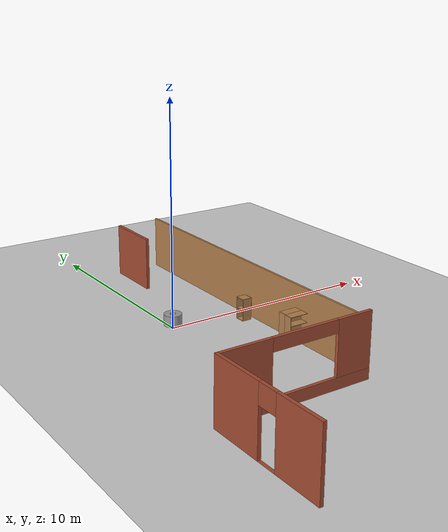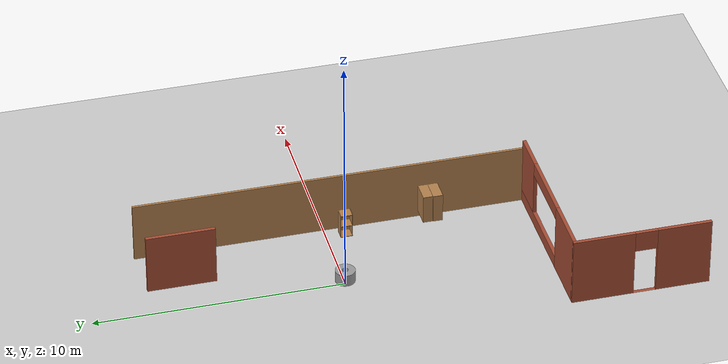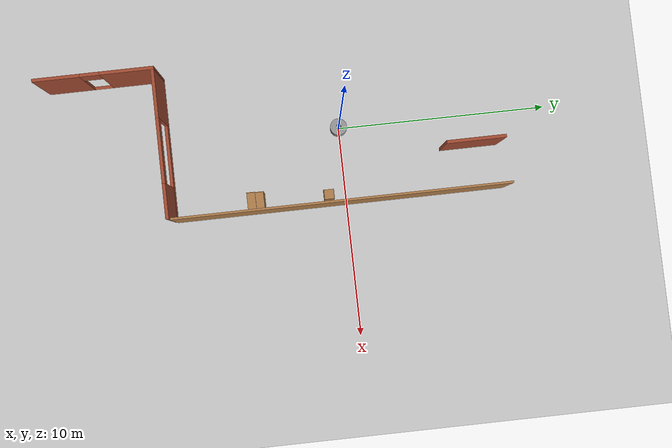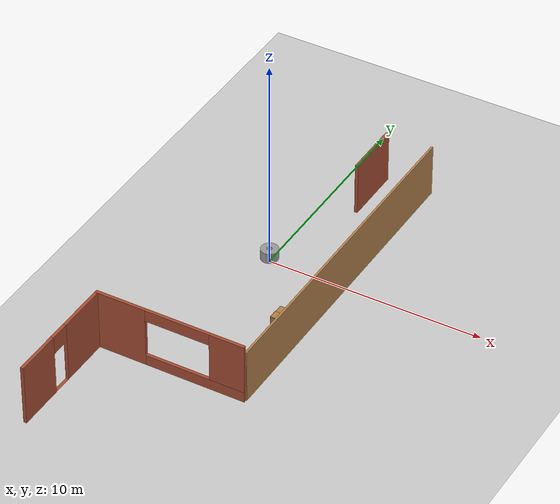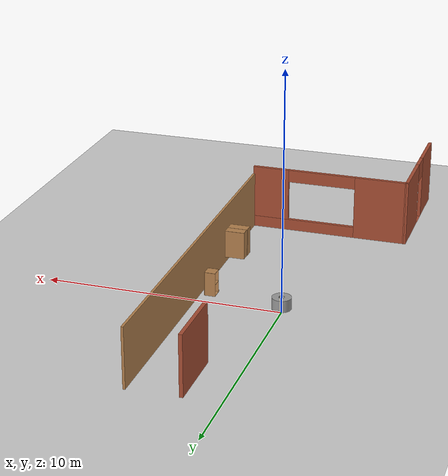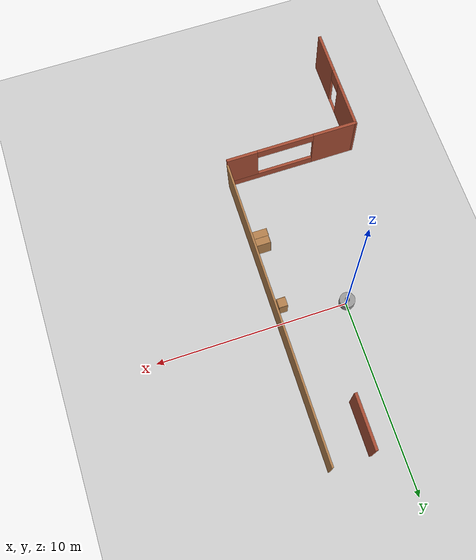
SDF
<sdf version="1.6">
 <world name="default">
  <model name="ground_plane">
   <static>1</static>
   <link name="link">
    <collision name="collision">
     <geometry><plane><normal>0 0 1</normal><size>100 100</size></plane></geometry>
    </collision>
    <visual name="visual">
     <cast_shadows>0</cast_shadows>
     <geometry><plane><normal>0 0 1</normal><size>100 100</size></plane></geometry>
     <material>
      <script><uri>file://media/materials/scripts/gazebo.material</uri><name>Gazebo/Grey</name></script>
     </material>
    </visual>
   </link>
  </model>
  <gravity>0 0 -9.8</gravity>
  <magnetic_field>6e-06 2.3e-05 -4.2e-05</magnetic_field>
  <atmosphere type="adiabatic"/>
  <physics name="default_physics" default="0" type="ode">
   <real_time_update_rate>250</real_time_update_rate>
   <max_step_size>0.004</max_step_size>
   <real_time_factor>1</real_time_factor>
   <ode>
    <solver>
     <type>quick</type>
     <iters>150</iters>
     <precon_iters>0</precon_iters>
     <sor>1.4</sor>
     <use_dynamic_moi_rescaling>1</use_dynamic_moi_rescaling>
    </solver>
    <constraints>
     <cfm>1e-05</cfm>
     <erp>0.2</erp>
     <contact_max_correcting_vel>2000</contact_max_correcting_vel>
     <contact_surface_layer>0.01</contact_surface_layer>
    </constraints>
   </ode>
  </physics>
  <scene><ambient>0.4 0.4 0.4 1</ambient><background>0.7 0.7 0.7 1</background><shadows>1</shadows></scene>
  <spherical_coordinates>
   <surface_model>EARTH_WGS84</surface_model>
   <latitude_deg>0</latitude_deg>
   <longitude_deg>0</longitude_deg>
   <elevation>0</elevation>
   <heading_deg>0</heading_deg>
  </spherical_coordinates>
  <model name="cafe_room">
   <pose>0.165031 -6.85753 0 0 -0 0</pose>
   <link name="Wall_0">
    <pose>3.8e-05 -1.36625 0 0 -0 0.000649</pose>
    <visual name="Wall_0_Visual_0">
     <pose>-2.31327 0 1.425 0 -0 0</pose>
     <geometry><box><size>2.37346 0.15 2.85</size></box></geometry>
     <material>
      <script><uri>file://media/materials/scripts/gazebo.material</uri><name>Gazebo/Bricks</name></script>
      <ambient>0.309804 0.309804 0.309804 1</ambient>
     </material>
     <meta><layer>0</layer></meta>
    </visual>
    <collision name="Wall_0_Collision_0">
     <geometry><box><size>2.37346 0.15 2.85</size></box></geometry>
     <pose>-2.31327 0 1.425 0 -0 0</pose>
    </collision>
    <visual name="Wall_0_Visual_1">
     <pose>1.18673 0 0.25 0 -0 0</pose>
     <geometry><box><size>4.62654 0.15 0.5</size></box></geometry>
     <material>
      <script><uri>file://media/materials/scripts/gazebo.material</uri><name>Gazebo/Bricks</name></script>
      <ambient>0.309804 0.309804 0.309804 1</ambient>
     </material>
     <meta><layer>0</layer></meta>
    </visual>
    <collision name="Wall_0_Collision_1">
     <geometry><box><size>4.62654 0.15 0.5</size></box></geometry>
     <pose>1.18673 0 0.25 0 -0 0</pose>
    </collision>
    <visual name="Wall_0_Visual_2">
     <pose>2.68673 0 1.675 0 -0 0</pose>
     <geometry><box><size>1.62654 0.15 2.35</size></box></geometry>
     <material>
      <script><uri>file://media/materials/scripts/gazebo.material</uri><name>Gazebo/Bricks</name></script>
      <ambient>0.309804 0.309804 0.309804 1</ambient>
     </material>
     <meta><layer>0</layer></meta>
    </visual>
    <collision name="Wall_0_Collision_2">
     <geometry><box><size>1.62654 0.15 2.35</size></box></geometry>
     <pose>2.68673 0 1.675 0 -0 0</pose>
    </collision>
    <visual name="Wall_0_Visual_3">
     <pose>0.37346 0 2.575 0 -0 0</pose>
     <geometry><box><size>3 0.15 0.55</size></box></geometry>
     <material>
      <script><uri>file://media/materials/scripts/gazebo.material</uri><name>Gazebo/Bricks</name></script>
      <ambient>0.309804 0.309804 0.309804 1</ambient>
     </material>
     <meta><layer>0</layer></meta>
    </visual>
    <collision name="Wall_0_Collision_3">
     <geometry><box><size>3 0.15 0.55</size></box></geometry>
     <pose>0.37346 0 2.575 0 -0 0</pose>
    </collision>
   </link>
   <link name="Wall_3">
    <pose>-3.42303 -4.07547 0 0 -0 -1.57006</pose>
    <visual name="Wall_3_Visual_0">
     <pose>-1.53914 0 1.425 0 -0 0</pose>
     <geometry><box><size>2.48571 0.15 2.85</size></box></geometry>
     <material>
      <script><uri>file://media/materials/scripts/gazebo.material</uri><name>Gazebo/Bricks</name></script>
      <ambient>0.309804 0.309804 0.309804 1</ambient>
     </material>
     <meta><layer>0</layer></meta>
    </visual>
    <collision name="Wall_3_Collision_0">
     <geometry><box><size>2.48571 0.15 2.85</size></box></geometry>
     <pose>-1.53914 0 1.425 0 -0 0</pose>
    </collision>
    <visual name="Wall_3_Visual_1">
     <pose>1.69286 0 1.425 0 -0 0</pose>
     <geometry><box><size>2.17829 0.15 2.85</size></box></geometry>
     <material>
      <script><uri>file://media/materials/scripts/gazebo.material</uri><name>Gazebo/Bricks</name></script>
      <ambient>0.309804 0.309804 0.309804 1</ambient>
     </material>
     <meta><layer>0</layer></meta>
    </visual>
    <collision name="Wall_3_Collision_1">
     <geometry><box><size>2.17829 0.15 2.85</size></box></geometry>
     <pose>1.69286 0 1.425 0 -0 0</pose>
    </collision>
    <visual name="Wall_3_Visual_2">
     <pose>0.153711 0 0 0 -0 0</pose>
     <geometry><box><size>0.9 0.15 0</size></box></geometry>
     <material>
      <script><uri>file://media/materials/scripts/gazebo.material</uri><name>Gazebo/Bricks</name></script>
      <ambient>0.309804 0.309804 0.309804 1</ambient>
     </material>
     <meta><layer>0</layer></meta>
    </visual>
    <collision name="Wall_3_Collision_2">
     <geometry><box><size>0.9 0.15 0</size></box></geometry>
     <pose>0.153711 0 0 0 -0 0</pose>
    </collision>
    <visual name="Wall_3_Visual_3">
     <pose>0.153711 0 2.425 0 -0 0</pose>
     <geometry><box><size>0.9 0.15 0.85</size></box></geometry>
     <material>
      <script><uri>file://media/materials/scripts/gazebo.material</uri><name>Gazebo/Bricks</name></script>
      <ambient>0.309804 0.309804 0.309804 1</ambient>
     </material>
     <meta><layer>0</layer></meta>
    </visual>
    <collision name="Wall_3_Collision_3">
     <geometry><box><size>0.9 0.15 0.85</size></box></geometry>
     <pose>0.153711 0 2.425 0 -0 0</pose>
    </collision>
   </link>
   <static>1</static>
  </model>
  <model name="ceiling">
   <link name="link">
    <inertial>
     <mass>100000</mass>
     <inertia><ixx>100000</ixx><ixy>0</ixy><ixz>0</ixz><iyy>100000</iyy><iyz>0</iyz><izz>100000</izz></inertia>
    </inertial>
    <collision name="collision"><geometry><box><size>300 300 0.5</size></box></geometry></collision>
   </link>
   <pose>-0.001253 -3e-05 3.11363 2.7e-05 -0.004139 -2.6e-05</pose>
  </model>
  <light name="user_directional_light_1" type="directional">
   <pose>69.4265 -45.3011 1 0 -0 0</pose>
   <diffuse>0.5 0.5 0.5 1</diffuse>
   <specular>0.1 0.1 0.1 1</specular>
   <direction>0.1 0.1 -0.9</direction>
   <attenuation>
    <range>20</range>
    <constant>0.5</constant>
    <linear>0.01</linear>
    <quadratic>0.001</quadratic>
   </attenuation>
  </light>
  <light name="user_point_light_0" type="point">
   <pose>-1.19379 -7.98022 1 0 -0 0</pose>
   <diffuse>0.5 0.5 0.5 1</diffuse>
   <specular>0.1 0.1 0.1 1</specular>
   <attenuation>
    <range>20</range>
    <constant>0.5</constant>
    <linear>0.01</linear>
    <quadratic>0.001</quadratic>
   </attenuation>
   <cast_shadows>0</cast_shadows>
   <direction>0 0 -1</direction>
  </light>
  <light name="user_point_light_1" type="point">
   <pose>0.766851 -12.0385 1 0 -0 0</pose>
   <diffuse>0.5 0.5 0.5 1</diffuse>
   <specular>0.1 0.1 0.1 1</specular>
   <attenuation>
    <range>20</range>
    <constant>0.5</constant>
    <linear>0.01</linear>
    <quadratic>0.001</quadratic>
   </attenuation>
   <cast_shadows>0</cast_shadows>
   <direction>0 0 -1</direction>
  </light>
  <light name="user_directional_light_2" type="directional">
   <pose>2.85707 -5.47055 1 0 -0 0</pose>
   <diffuse>0.5 0.5 0.5 1</diffuse>
   <specular>0.1 0.1 0.1 1</specular>
   <direction>0.1 0.1 -0.9</direction>
   <attenuation>
    <range>20</range>
    <constant>0.5</constant>
    <linear>0.01</linear>
    <quadratic>0.001</quadratic>
   </attenuation>
  </light>
  <light name="user_point_light_3" type="point">
   <pose>2.80305 -7.84683 1 0 -0 0</pose>
   <diffuse>0.5 0.5 0.5 1</diffuse>
   <specular>0.1 0.1 0.1 1</specular>
   <attenuation>
    <range>20</range>
    <constant>0.5</constant>
    <linear>0.01</linear>
    <quadratic>0.001</quadratic>
   </attenuation>
   <cast_shadows>0</cast_shadows>
   <direction>0 0 -1</direction>
  </light>
  <light name="user_directional_light_3" type="directional">
   <pose>-3.4686 -9.00205 1 0 -0 0</pose>
   <diffuse>0.5 0.5 0.5 1</diffuse>
   <specular>0.1 0.1 0.1 1</specular>
   <direction>0.1 0.1 -0.9</direction>
   <attenuation>
    <range>20</range>
    <constant>0.5</constant>
    <linear>0.01</linear>
    <quadratic>0.001</quadratic>
   </attenuation>
  </light>
  <light name="user_directional_light_4" type="directional">
   <pose>2.30045 -0.072071 1 0 -0 0</pose>
   <diffuse>0.5 0.5 0.5 1</diffuse>
   <specular>0.1 0.1 0.1 1</specular>
   <direction>0.1 0.1 -0.9</direction>
   <attenuation>
    <range>20</range>
    <constant>0.5</constant>
    <linear>0.01</linear>
    <quadratic>0.001</quadratic>
   </attenuation>
  </light>
  <light name="user_point_light_4" type="point">
   <pose>0.076075 -5.91752 1 0 -0 0</pose>
   <diffuse>0.5 0.5 0.5 1</diffuse>
   <specular>0.1 0.1 0.1 1</specular>
   <attenuation>
    <range>20</range>
    <constant>0.5</constant>
    <linear>0.01</linear>
    <quadratic>0.001</quadratic>
   </attenuation>
   <cast_shadows>0</cast_shadows>
   <direction>0 0 -1</direction>
  </light>
  <model name="bookshelf">
   <static>1</static>
   <link name="link">
    <inertial><mass>1</mass></inertial>
    <collision name="back">
     <pose>0 0.005 0.6 0 -0 0</pose>
     <geometry><box><size>0.9 0.01 1.2</size></box></geometry>
    </collision>
    <visual name="visual1">
     <pose>0 0.005 0.6 0 -0 0</pose>
     <geometry><box><size>0.9 0.01 1.2</size></box></geometry>
     <material>
      <script><uri>file://media/materials/scripts/gazebo.material</uri><name>Gazebo/Wood</name></script>
     </material>
    </visual>
    <collision name="left_side">
     <pose>0.45 -0.195 0.6 0 -0 0</pose>
     <geometry><box><size>0.02 0.4 1.2</size></box></geometry>
    </collision>
    <visual name="visual2">
     <pose>0.45 -0.195 0.6 0 -0 0</pose>
     <geometry><box><size>0.02 0.4 1.2</size></box></geometry>
     <material>
      <script><uri>file://media/materials/scripts/gazebo.material</uri><name>Gazebo/Wood</name></script>
     </material>
    </visual>
    <collision name="right_side">
     <pose>-0.45 -0.195 0.6 0 -0 0</pose>
     <geometry><box><size>0.02 0.4 1.2</size></box></geometry>
    </collision>
    <visual name="visual3">
     <pose>-0.45 -0.195 0.6 0 -0 0</pose>
     <geometry><box><size>0.02 0.4 1.2</size></box></geometry>
     <material>
      <script><uri>file://media/materials/scripts/gazebo.material</uri><name>Gazebo/Wood</name></script>
     </material>
    </visual>
    <collision name="bottom">
     <pose>0 -0.195 0.03 0 -0 0</pose>
     <geometry><box><size>0.88 0.4 0.06</size></box></geometry>
    </collision>
    <visual name="visual4">
     <pose>0 -0.195 0.03 0 -0 0</pose>
     <geometry><box><size>0.88 0.4 0.06</size></box></geometry>
     <material>
      <script><uri>file://media/materials/scripts/gazebo.material</uri><name>Gazebo/Wood</name></script>
     </material>
    </visual>
    <collision name="top">
     <pose>0 -0.195 1.19 0 -0 0</pose>
     <geometry><box><size>0.88 0.4 0.02</size></box></geometry>
    </collision>
    <visual name="visual5">
     <pose>0 -0.195 1.19 0 -0 0</pose>
     <geometry><box><size>0.88 0.4 0.02</size></box></geometry>
     <material>
      <script><uri>file://media/materials/scripts/gazebo.material</uri><name>Gazebo/Wood</name></script>
     </material>
    </visual>
    <collision name="low_shelf">
     <pose>0 -0.195 0.43 0 -0 0</pose>
     <geometry><box><size>0.88 0.4 0.02</size></box></geometry>
    </collision>
    <visual name="visual6">
     <pose>0 -0.195 0.43 0 -0 0</pose>
     <geometry><box><size>0.88 0.4 0.02</size></box></geometry>
     <material>
      <script><uri>file://media/materials/scripts/gazebo.material</uri><name>Gazebo/Wood</name></script>
     </material>
    </visual>
    <collision name="high_shelf">
     <pose>0 -0.195 0.8 0 -0 0</pose>
     <geometry><box><size>0.88 0.4 0.02</size></box></geometry>
    </collision>
    <visual name="visual7">
     <pose>0 -0.195 0.8 0 -0 0</pose>
     <geometry><box><size>0.88 0.4 0.02</size></box></geometry>
     <material>
      <script><uri>file://media/materials/scripts/gazebo.material</uri><name>Gazebo/Wood</name></script>
     </material>
    </visual>
   </link>
   <pose>3.20033 -4.26028 0.271039 0 -0 0</pose>
  </model>
  <model name="bookshelf_clone">
   <static>1</static>
   <link name="link">
    <inertial><mass>1</mass></inertial>
    <collision name="back">
     <pose>0 0.005 0.6 0 -0 0</pose>
     <geometry><box><size>0.9 0.01 1.2</size></box></geometry>
    </collision>
    <visual name="visual1">
     <pose>0 0.005 0.6 0 -0 0</pose>
     <geometry><box><size>0.9 0.01 1.2</size></box></geometry>
     <material>
      <script><uri>file://media/materials/scripts/gazebo.material</uri><name>Gazebo/Wood</name></script>
     </material>
    </visual>
    <collision name="left_side">
     <pose>0.45 -0.195 0.6 0 -0 0</pose>
     <geometry><box><size>0.02 0.4 1.2</size></box></geometry>
    </collision>
    <visual name="visual2">
     <pose>0.45 -0.195 0.6 0 -0 0</pose>
     <geometry><box><size>0.02 0.4 1.2</size></box></geometry>
     <material>
      <script><uri>file://media/materials/scripts/gazebo.material</uri><name>Gazebo/Wood</name></script>
     </material>
    </visual>
    <collision name="right_side">
     <pose>-0.45 -0.195 0.6 0 -0 0</pose>
     <geometry><box><size>0.02 0.4 1.2</size></box></geometry>
    </collision>
    <visual name="visual3">
     <pose>-0.45 -0.195 0.6 0 -0 0</pose>
     <geometry><box><size>0.02 0.4 1.2</size></box></geometry>
     <material>
      <script><uri>file://media/materials/scripts/gazebo.material</uri><name>Gazebo/Wood</name></script>
     </material>
    </visual>
    <collision name="bottom">
     <pose>0 -0.195 0.03 0 -0 0</pose>
     <geometry><box><size>0.88 0.4 0.06</size></box></geometry>
    </collision>
    <visual name="visual4">
     <pose>0 -0.195 0.03 0 -0 0</pose>
     <geometry><box><size>0.88 0.4 0.06</size></box></geometry>
     <material>
      <script><uri>file://media/materials/scripts/gazebo.material</uri><name>Gazebo/Wood</name></script>
     </material>
    </visual>
    <collision name="top">
     <pose>0 -0.195 1.19 0 -0 0</pose>
     <geometry><box><size>0.88 0.4 0.02</size></box></geometry>
    </collision>
    <visual name="visual5">
     <pose>0 -0.195 1.19 0 -0 0</pose>
     <geometry><box><size>0.88 0.4 0.02</size></box></geometry>
     <material>
      <script><uri>file://media/materials/scripts/gazebo.material</uri><name>Gazebo/Wood</name></script>
     </material>
    </visual>
    <collision name="low_shelf">
     <pose>0 -0.195 0.43 0 -0 0</pose>
     <geometry><box><size>0.88 0.4 0.02</size></box></geometry>
    </collision>
    <visual name="visual6">
     <pose>0 -0.195 0.43 0 -0 0</pose>
     <geometry><box><size>0.88 0.4 0.02</size></box></geometry>
     <material>
      <script><uri>file://media/materials/scripts/gazebo.material</uri><name>Gazebo/Wood</name></script>
     </material>
    </visual>
    <collision name="high_shelf">
     <pose>0 -0.195 0.8 0 -0 0</pose>
     <geometry><box><size>0.88 0.4 0.02</size></box></geometry>
    </collision>
    <visual name="visual7">
     <pose>0 -0.195 0.8 0 -0 0</pose>
     <geometry><box><size>0.88 0.4 0.02</size></box></geometry>
     <material>
      <script><uri>file://media/materials/scripts/gazebo.material</uri><name>Gazebo/Wood</name></script>
     </material>
    </visual>
   </link>
   <pose>3.22029 -3.86837 0.271039 0 -0 0</pose>
  </model>
  <model name="cabinet">
   <static>1</static>
   <link name="cabinet_bottom_plate">
    <inertial>
     <pose>0 0 -1 0 -0 0</pose>
     <inertia><ixx>2.05</ixx><ixy>0</ixy><ixz>0</ixz><iyy>2.05</iyy><iyz>0</iyz><izz>2.05</izz></inertia>
     <mass>25</mass>
    </inertial>
    <collision name="cabinet_bottom_plate_geom">
     <pose>0 0 0.01 0 -0 0</pose>
     <geometry><box><size>0.45 0.45 0.02</size></box></geometry>
    </collision>
    <visual name="cabinet_bottom_plate_geom_visual">
     <pose>0 0 0.01 0 -0 0</pose>
     <geometry><box><size>0.45 0.45 0.02</size></box></geometry>
     <material>
      <script><uri>file://media/materials/scripts/gazebo.material</uri><name>Gazebo/Wood</name></script>
     </material>
    </visual>
    <collision name="cabinet_bottom_plate_geom_cabinet_back_plate">
     <pose>0.235 0 0.51 0 -0 0</pose>
     <geometry><box><size>0.02 0.45 1.02</size></box></geometry>
    </collision>
    <visual name="cabinet_bottom_plate_geom_cabinet_back_plate_visual">
     <pose>0.235 0 0.51 0 -0 0</pose>
     <geometry><box><size>0.02 0.45 1.02</size></box></geometry>
     <material>
      <script><uri>file://media/materials/scripts/gazebo.material</uri><name>Gazebo/Wood</name></script>
     </material>
    </visual>
    <collision name="cabinet_bottom_plate_geom_cabinet_left_plate">
     <pose>0 0.235 0.51 0 -0 0</pose>
     <geometry><box><size>0.45 0.02 1.02</size></box></geometry>
    </collision>
    <visual name="cabinet_bottom_plate_geom_cabinet_left_plate_visual">
     <pose>0 0.235 0.51 0 -0 0</pose>
     <geometry><box><size>0.45 0.02 1.02</size></box></geometry>
     <material>
      <script><uri>file://media/materials/scripts/gazebo.material</uri><name>Gazebo/Wood</name></script>
     </material>
    </visual>
    <collision name="cabinet_bottom_plate_geom_cabinet_middle_plate">
     <pose>0 0 0.51 0 -0 0</pose>
     <geometry><box><size>0.45 0.45 0.02</size></box></geometry>
    </collision>
    <visual name="cabinet_bottom_plate_geom_cabinet_middle_plate_visual">
     <pose>0 0 0.51 0 -0 0</pose>
     <geometry><box><size>0.45 0.45 0.02</size></box></geometry>
     <material>
      <script><uri>file://media/materials/scripts/gazebo.material</uri><name>Gazebo/Wood</name></script>
     </material>
    </visual>
    <collision name="cabinet_bottom_plate_geom_cabinet_right_plate">
     <pose>0 -0.235 0.51 0 -0 0</pose>
     <geometry><box><size>0.45 0.02 1.02</size></box></geometry>
    </collision>
    <visual name="cabinet_bottom_plate_geom_cabinet_right_plate_visual">
     <pose>0 -0.235 0.51 0 -0 0</pose>
     <geometry><box><size>0.45 0.02 1.02</size></box></geometry>
     <material>
      <script><uri>file://media/materials/scripts/gazebo.material</uri><name>Gazebo/Wood</name></script>
     </material>
    </visual>
    <collision name="cabinet_bottom_plate_geom_cabinet_top_plate">
     <pose>0 0 1.01 0 -0 0</pose>
     <geometry><box><size>0.45 0.45 0.02</size></box></geometry>
    </collision>
    <visual name="cabinet_bottom_plate_geom_cabinet_top_plate_visual">
     <pose>0 0 1.01 0 -0 0</pose>
     <geometry><box><size>0.45 0.45 0.02</size></box></geometry>
     <material>
      <script><uri>file://media/materials/scripts/gazebo.material</uri><name>Gazebo/Wood</name></script>
     </material>
    </visual>
   </link>
   <pose>3.18421 -0.807099 0 0 -0 0</pose>
  </model>
  <model name="Untitled">
   <pose>1.85235 -0.28035 0 0 -0 0</pose>
   <link name="Wall_10">
    <collision name="Wall_10_Collision">
     <geometry><box><size>2.75 0.15 2.5</size></box></geometry>
     <pose>0 0 1.25 0 -0 0</pose>
    </collision>
    <visual name="Wall_10_Visual">
     <pose>0 0 1.25 0 -0 0</pose>
     <geometry><box><size>2.75 0.15 2.5</size></box></geometry>
     <material>
      <script><uri>file://media/materials/scripts/gazebo.material</uri><name>Gazebo/Bricks</name></script>
      <ambient>1 1 1 1</ambient>
     </material>
     <meta><layer>0</layer></meta>
    </visual>
    <pose>-0.333164 6.4203 0 0 -0 -1.5708</pose>
   </link>
   <link name="Wall_4">
    <collision name="Wall_4_Collision">
     <geometry><box><size>15.75 0.1 2.5</size></box></geometry>
     <pose>0 0 1.25 0 -0 0</pose>
    </collision>
    <visual name="Wall_4_Visual">
     <pose>0 0 1.25 0 -0 0</pose>
     <geometry><box><size>15.75 0.1 2.5</size></box></geometry>
     <material>
      <script><uri>file://media/materials/scripts/gazebo.material</uri><name>Gazebo/Wood</name></script>
      <ambient>1 1 1 1</ambient>
     </material>
     <meta><layer>0</layer></meta>
    </visual>
    <pose>1.80235 -0 0 0 -0 -1.5708</pose>
   </link>
   <static>1</static>
  </model>
  <model name="uav_arm_base">
   <link name="link_0">
    <inertial>
     <mass>100</mass>
     <inertia><ixx>16.6667</ixx><ixy>0</ixy><ixz>0</ixz><iyy>16.6667</iyy><iyz>0</iyz><izz>16.6667</izz></inertia>
     <pose>0.4 0.4 0 0 -0 0</pose>
    </inertial>
    <visual name="visual">
     <geometry><mesh><uri>/home/station18/ROS/gazebo_uav_base.stl</uri><scale>1 1 1</scale></mesh></geometry>
     <material>
      <lighting>1</lighting>
      <script><uri>file://media/materials/scripts/gazebo.material</uri><name>Gazebo/Grey</name></script>
      <shader type="pixel"><normal_map>__default__</normal_map></shader>
      <ambient>0.3 0.3 0.3 1</ambient>
      <diffuse>0.7 0.7 0.7 1</diffuse>
      <specular>0.01 0.01 0.01 1</specular>
      <emissive>0 0 0 1</emissive>
     </material>
    </visual>
    <collision name="collision">
     <geometry><mesh><uri>/home/station18/ROS/gazebo_uav_base.stl</uri><scale>1 1 1</scale></mesh></geometry>
     <surface>
      <friction>
       <ode><mu>1</mu><mu2>1</mu2><fdir1>0 0 0</fdir1><slip1>0</slip1><slip2>0</slip2></ode>
       <torsional>
        <coefficient>1</coefficient>
        <patch_radius>0</patch_radius>
        <surface_radius>0</surface_radius>
        <use_patch_radius>1</use_patch_radius>
        <ode><slip>0</slip></ode>
       </torsional>
      </friction>
      <bounce><restitution_coefficient>0</restitution_coefficient><threshold>1e+06</threshold></bounce>
      <contact>
       <collide_without_contact>0</collide_without_contact>
       <collide_without_contact_bitmask>1</collide_without_contact_bitmask>
       <collide_bitmask>1</collide_bitmask>
       <ode>
        <soft_cfm>0</soft_cfm>
        <soft_erp>0.2</soft_erp>
        <kp>1e+13</kp>
        <kd>1</kd>
        <max_vel>0.01</max_vel>
        <min_depth>0</min_depth>
       </ode>
       <bullet>
        <split_impulse>1</split_impulse>
        <split_impulse_penetration_threshold>-0.01</split_impulse_penetration_threshold>
        <soft_cfm>0</soft_cfm>
        <soft_erp>0.2</soft_erp>
        <kp>1e+13</kp>
        <kd>1</kd>
       </bullet>
      </contact>
     </surface>
    </collision>
   </link>
   <static>0</static>
   <pose>-0.4 -0.4 0.189767 -1.7e-05 -6.4e-05 0</pose>
  </model>
 </world>
</sdf>
